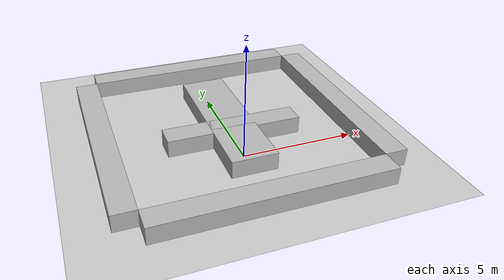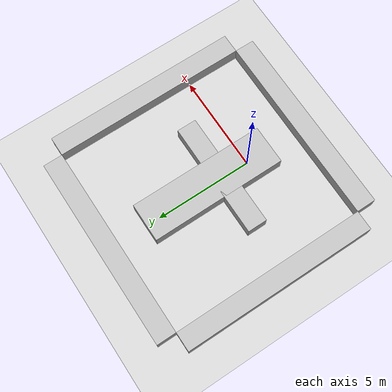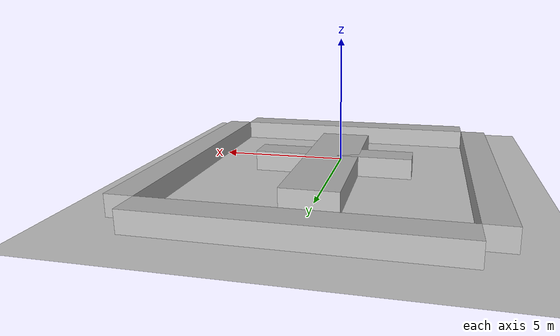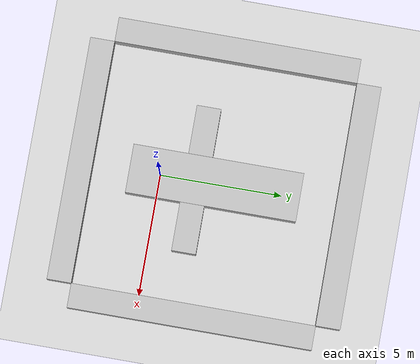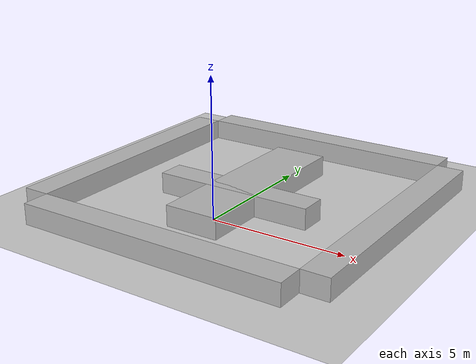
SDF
<sdf version='1.6'>
  <world name='default'>
    <light name='sun' type='directional'>
      <cast_shadows>1</cast_shadows>
      <pose frame=''>0 0 10 0 -0 0</pose>
      <diffuse>0.8 0.8 0.8 1</diffuse>
      <specular>0.1 0.1 0.1 1</specular>
      <attenuation>
        <range>1000</range>
        <constant>0.9</constant>
        <linear>0.01</linear>
        <quadratic>0.001</quadratic>
      </attenuation>
      <direction>-0.5 0.5 -1</direction>
    </light>
    <model name='ground_plane'>
      <static>1</static>
      <link name='link'>
        <collision name='collision'>
          <geometry>
            <plane>
              <normal>0 0 1</normal>
              <size>100 100</size>
            </plane>
          </geometry>
          <surface>
            <friction>
              <ode>
                <mu>100</mu>
                <mu2>50</mu2>
              </ode>
              <torsional>
                <ode/>
              </torsional>
            </friction>
            <contact>
              <ode/>
            </contact>
            <bounce/>
          </surface>
          <max_contacts>10</max_contacts>
        </collision>
        <visual name='visual'>
          <cast_shadows>0</cast_shadows>
          <geometry>
            <plane>
              <normal>0 0 1</normal>
              <size>100 100</size>
            </plane>
          </geometry>
          <material>
            <script>
              <uri>file://media/materials/scripts/gazebo.material</uri>
              <name>Gazebo/Grey</name>
            </script>
          </material>
        </visual>
        <self_collide>0</self_collide>
        <kinematic>0</kinematic>
        <gravity>1</gravity>
      </link>
    </model>
    <gravity>0 0 -9.8</gravity>
    <magnetic_field>6e-06 2.3e-05 -4.2e-05</magnetic_field>
    <atmosphere type='adiabatic'/>
    <physics name='default_physics' default='0' type='ode'>
      <max_step_size>0.001</max_step_size>
      <real_time_update_rate>1000</real_time_update_rate>
    </physics>

    <scene>
      <ambient>0.4 0.4 0.4 1</ambient>
      <background>0.7 0.7 0.7 1</background>
      <shadows>1</shadows>
    </scene>
    <spherical_coordinates>
      <surface_model>EARTH_WGS84</surface_model>
      <latitude_deg>0</latitude_deg>
      <longitude_deg>0</longitude_deg>
      <elevation>0</elevation>
      <heading_deg>0</heading_deg>
    </spherical_coordinates>

    <model name='brick_box_3x1x3'>
      <static>1</static>
      <link name='chassis'>
        <pose frame=''>0 0 0 0 0 0</pose>
        <collision name='collision'>
          <geometry>
            <box>
              <size>10 1 1.5</size>
            </box>
          </geometry>
          <max_contacts>10</max_contacts>
          <surface>
            <contact>
              <ode/>
            </contact>
            <bounce/>
            <friction>
              <torsional>
                <ode/>
              </torsional>
              <ode/>
            </friction>
          </surface>
        </collision>
        <visual name='visual'>
          <geometry>
            <mesh>
              <uri>model://brick_box_3x1x3/meshes/simple_box.dae</uri>
              <scale>10 1 1.5</scale>
            </mesh>
          </geometry>
          <material>
            <script>
              <uri>model://brick_box_3x1x3/materials/scripts</uri>
              <uri>model://brick_box_3x1x3/materials/textures</uri>
              <name>BrickBox/Diffuse</name>
            </script>
          </material>
        </visual>
        <self_collide>0</self_collide>
        <kinematic>0</kinematic>
        <gravity>1</gravity>
      </link>
      <pose frame=''>0 -3.25 0 0 0 0</pose>
    </model>

    <model name='brick_box_3x1x3_3'>
      <static>1</static>
      <link name='chassis'>
        <pose frame=''>0 0 0 0 0 0</pose>
        <collision name='collision'>
          <geometry>
            <box>
              <size>10 1 1.5</size>
            </box>
          </geometry>
          <max_contacts>10</max_contacts>
          <surface>
            <contact>
              <ode/>
            </contact>
            <bounce/>
            <friction>
              <torsional>
                <ode/>
              </torsional>
              <ode/>
            </friction>
          </surface>
        </collision>
        <visual name='visual'>
          <geometry>
            <mesh>
              <uri>model://brick_box_3x1x3/meshes/simple_box.dae</uri>
              <scale>10 1 1.5</scale>
            </mesh>
          </geometry>
          <material>
            <script>
              <uri>model://brick_box_3x1x3/materials/scripts</uri>
              <uri>model://brick_box_3x1x3/materials/textures</uri>
              <name>BrickBox/Diffuse</name>
            </script>
          </material>
        </visual>
        <self_collide>0</self_collide>
        <kinematic>0</kinematic>
        <gravity>1</gravity>
      </link>
      <pose frame=''>5.5 2.25 0 0 0 1.57</pose>
    </model>

    <model name='brick_box_3x1x3_5'>
      <static>1</static>
      <link name='chassis'>
        <pose frame=''>0 0 0 0 0 0</pose>
        <collision name='collision'>
          <geometry>
            <box>
              <size>10 1 1.5</size>
            </box>
          </geometry>
          <max_contacts>10</max_contacts>
          <surface>
            <contact>
              <ode/>
            </contact>
            <bounce/>
            <friction>
              <torsional>
                <ode/>
              </torsional>
              <ode/>
            </friction>
          </surface>
        </collision>
        <visual name='visual'>
          <geometry>
            <mesh>
              <uri>model://brick_box_3x1x3/meshes/simple_box.dae</uri>
              <scale>10 1 1.5</scale>
            </mesh>
          </geometry>
          <material>
            <script>
              <uri>model://brick_box_3x1x3/materials/scripts</uri>
              <uri>model://brick_box_3x1x3/materials/textures</uri>
              <name>BrickBox/Diffuse</name>
            </script>
          </material>
        </visual>
        <self_collide>0</self_collide>
        <kinematic>0</kinematic>
        <gravity>1</gravity>
      </link>
      <pose frame=''>0 7.75 0 0 -0 0</pose>
    </model>

    <model name='brick_box_3x1x3_8'>
      <static>1</static>
      <link name='chassis'>
        <pose frame=''>0 0 0 0 0 0</pose>
        <collision name='collision'>
          <geometry>
            <box>
              <size>10 1 1.5</size>
            </box>
          </geometry>
          <max_contacts>10</max_contacts>
          <surface>
            <contact>
              <ode/>
            </contact>
            <bounce/>
            <friction>
              <torsional>
                <ode/>
              </torsional>
              <ode/>
            </friction>
          </surface>
        </collision>
        <visual name='visual'>
          <geometry>
            <mesh>
              <uri>model://brick_box_3x1x3/meshes/simple_box.dae</uri>
              <scale>10 1 1.5</scale>
            </mesh>
          </geometry>
          <material>
            <script>
              <uri>model://brick_box_3x1x3/materials/scripts</uri>
              <uri>model://brick_box_3x1x3/materials/textures</uri>
              <name>BrickBox/Diffuse</name>
            </script>
          </material>
        </visual>
        <self_collide>0</self_collide>
        <kinematic>0</kinematic>
        <gravity>1</gravity>
      </link>
      <pose frame=''>-5.5 2.25 0 0 -0 1.57</pose>
    </model>

    <model name='brick_box_3x1x3_9'>
      <static>1</static>
      <link name='chassis'>
        <pose frame=''>0 0 0 0 0 0</pose>
        <collision name='collision'>
          <geometry>
            <box>
              <size>2 7 1.5</size>
            </box>
          </geometry>
          <max_contacts>10</max_contacts>
          <surface>
            <contact>
              <ode/>
            </contact>
            <bounce/>
            <friction>
              <torsional>
                <ode/>
              </torsional>
              <ode/>
            </friction>
          </surface>
        </collision>
        <visual name='visual'>
          <geometry>
            <mesh>
              <uri>model://brick_box_3x1x3/meshes/simple_box.dae</uri>
              <scale>2 7 1.5</scale>
            </mesh>
          </geometry>
          <material>
            <script>
              <uri>model://brick_box_3x1x3/materials/scripts</uri>
              <uri>model://brick_box_3x1x3/materials/textures</uri>
              <name>BrickBox/Diffuse</name>
            </script>
          </material>
        </visual>
        <self_collide>0</self_collide>
        <kinematic>0</kinematic>
        <gravity>1</gravity>
      </link>
      <pose frame=''>0 2.25 0 0 -0 0</pose>
    </model>

    <model name='brick_box_3x1x3_10'>
      <static>1</static>
      <link name='chassis'>
        <pose frame=''>0 0 0 0 0 0</pose>
        <collision name='collision'>
          <geometry>
            <box>
              <size>6 1 1.5</size>
            </box>
          </geometry>
          <max_contacts>10</max_contacts>
          <surface>
            <contact>
              <ode/>
            </contact>
            <bounce/>
            <friction>
              <torsional>
                <ode/>
              </torsional>
              <ode/>
            </friction>
          </surface>
        </collision>
        <visual name='visual'>
          <geometry>
            <mesh>
              <uri>model://brick_box_3x1x3/meshes/simple_box.dae</uri>
              <scale>6 1 1.5</scale>
            </mesh>
          </geometry>
          <material>
            <script>
              <uri>model://brick_box_3x1x3/materials/scripts</uri>
              <uri>model://brick_box_3x1x3/materials/textures</uri>
              <name>BrickBox/Diffuse</name>
            </script>
          </material>
        </visual>
        <self_collide>0</self_collide>
        <kinematic>0</kinematic>
        <gravity>1</gravity>
      </link>
      <pose frame=''>0 1.5 0 0 -0 0</pose>
    </model>

    <gui fullscreen='0'>
      <camera name='user_camera'>
        <pose frame=''>-9.83128 -9.78773 19.6343 0 0.855644 0.945849</pose>
        <view_controller>orbit</view_controller>
        <projection_type>perspective</projection_type>
      </camera>
    </gui>
  </world>
</sdf>
